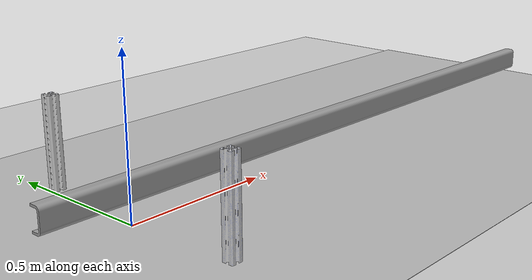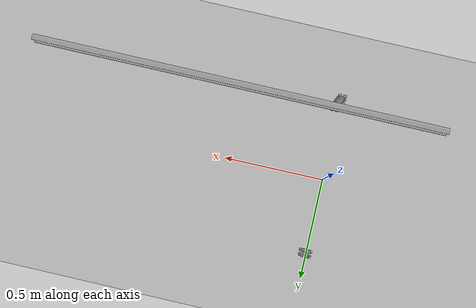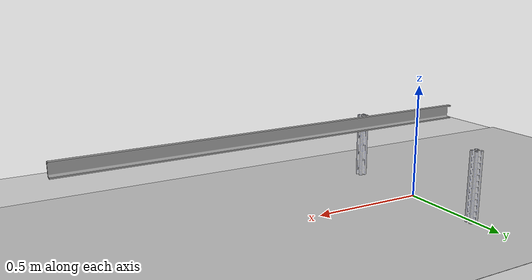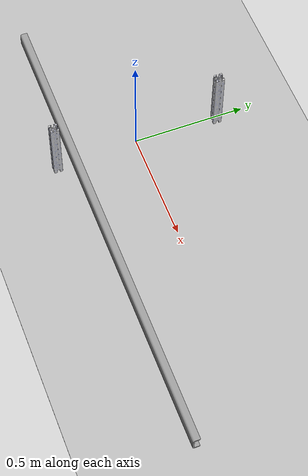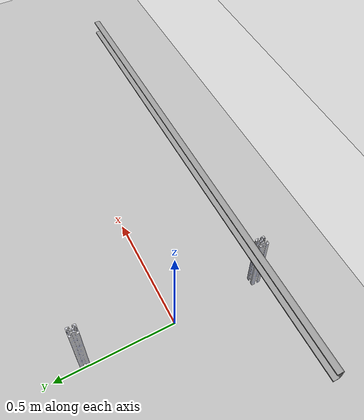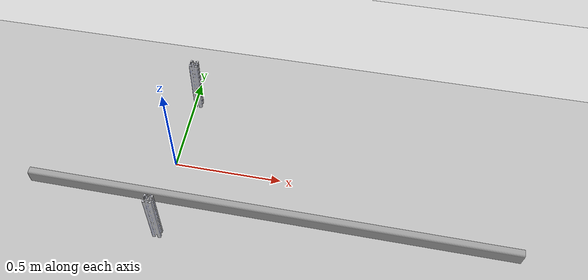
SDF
<sdf version="1.4">
 <world name="default">
  <include><uri>model://ground_plane</uri></include>
  <include><uri>model://sun</uri></include>
  <include><uri>model://black_line</uri></include>
  <include><uri>model://u_rail_100</uri></include>
  <include><uri>model://aluminum_extrusion</uri></include>
 </world>
</sdf>

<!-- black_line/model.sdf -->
<sdf version="1.4">
<model name="black_line">
  <static>true</static>
    <link name="link">
      <collision name="collision">
       <pose>0 0.0 0.005 0 0 0</pose>
        <geometry>
          <plane>
            <normal>0 0 1</normal>
            <size>5 1.5</size>
          </plane>
        </geometry>
        <surface>
          <friction>
            <ode>
              <mu>1</mu>
              <mu2>1</mu2>
            </ode>
          </friction>
        </surface>
      </collision>
      <visual name="visual">
       <pose>0 0.0 0.005 0 0 0</pose>
        <cast_shadows>false</cast_shadows>
        <geometry>
          <plane>
            <normal>0 0 1</normal>
            <size>5 1.5</size>
          </plane>
        </geometry>
        <material>
          <script>
            <uri>model://black_line/materials/scripts</uri>
            <uri>model://black_line/materials/textures</uri>
            <name>black_line/Image</name>
          </script>
        </material>
      </visual>
    </link>
  </model>
</sdf>

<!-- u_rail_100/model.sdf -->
<sdf version="1.5">
  <model name="u_rail_100">
    <static>true</static>
    <link name="link">
      <collision name="collision">
       <pose>-0.5 -0.345 0.3085 0 1.5758 0</pose>
        <geometry>
          <surface>
          <friction>
            <ode>
              <mu>0.2</mu>
              <mu2>0.2</mu2>
            </ode>
          </friction>
          </surface>
          <mesh>
            <uri>model://u_rail_100/meshes/model.dae</uri>
            <scale>0.00103 0.001 0.002</scale>
          </mesh>
        </geometry>
      </collision>
      <visual name="visual">
        <pose>-0.5 -0.345 0.3085 0 1.5758 0</pose>
        <geometry>
          <mesh>
            <uri>model://u_rail_100/meshes/model.dae</uri>
            <scale>0.00103 0.001 0.002</scale>
          </mesh>
        </geometry>
      </visual>
    </link>
  </model>
</sdf>

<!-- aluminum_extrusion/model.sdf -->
<sdf version="1.5">
  <model name="aluminum_extrusion">
    <static>true</static>
    <link name="link">
      <collision name="collision">
       <pose>0 -0.35 0 1.57 0 0</pose>
        <geometry>
          <surface>
          <friction>
            <ode>
              <mu>0.2</mu>
              <mu2>0.2</mu2>
            </ode>
          </friction>
          </surface>
          <mesh>
            <uri>model://aluminum_extrusion/meshes/model.dae</uri>
            <scale>1.5 2 1.5</scale>
          </mesh>
        </geometry>
      </collision>
      <visual name="visual">
        <pose>0 -0.35 0 1.57 0 0</pose>
        <geometry>
          <mesh>
            <uri>model://aluminum_extrusion/meshes/model.dae</uri>
            <scale>1.5 2 1.5</scale>
          </mesh>
        </geometry>
      </visual>
    </link>

    <link name="link2">
      <collision name="collision">
       <pose>0 0.39 0 1.57 0 0</pose>
        <geometry>
          <surface>
          <friction>
            <ode>
              <mu>0.2</mu>
              <mu2>0.2</mu2>
            </ode>
          </friction>
          </surface>
          <mesh>
            <uri>model://aluminum_extrusion/meshes/model.dae</uri>
            <scale>1.5 2 1.5</scale>
          </mesh>
        </geometry>
      </collision>
      <visual name="visual">
        <pose>0 0.39 0 1.57 0 0</pose>
        <geometry>
          <mesh>
            <uri>model://aluminum_extrusion/meshes/model.dae</uri>
            <scale>1.5 2 1.5</scale>
          </mesh>
        </geometry>
      </visual>
    </link>
  </model>

</sdf>
